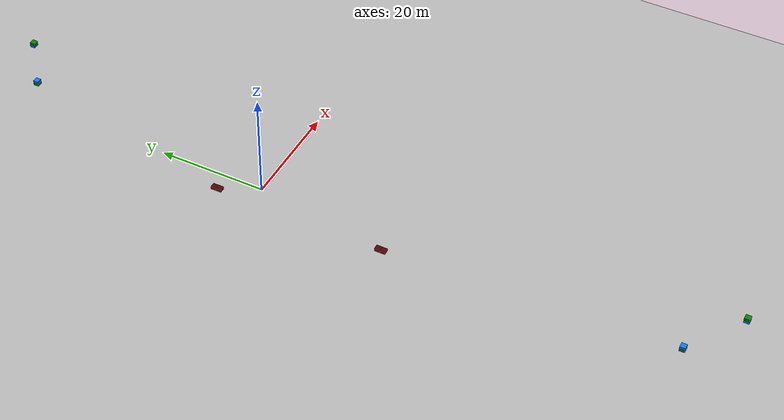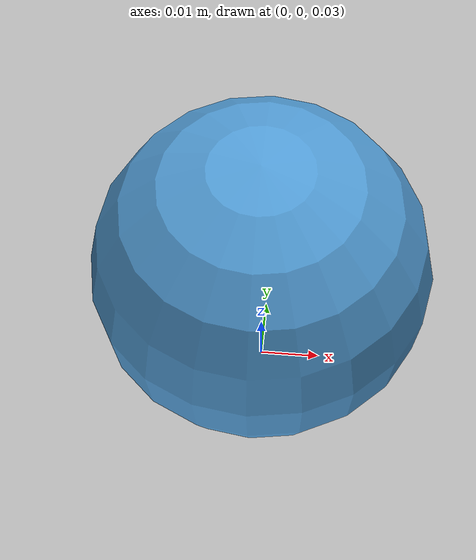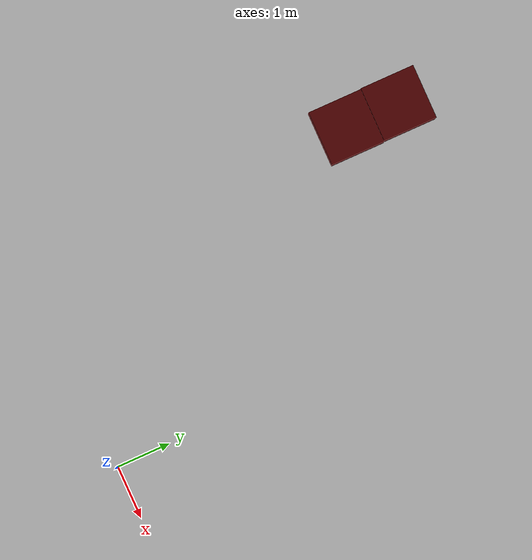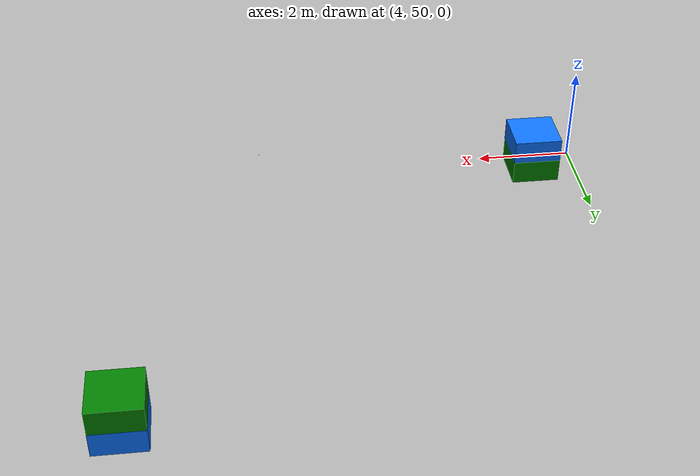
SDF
<sdf version="1.10">
 <world name="KKI">
  <physics name="4ms" type="dart">
   <max_step_size>0.0040000000000000001</max_step_size>
   <real_time_factor>1</real_time_factor>
   <real_time_update_rate>1000</real_time_update_rate>
  </physics>
  <plugin name="gz::sim::systems::Physics" filename="gz-sim-physics-system"/>
  <plugin name="gz::sim::systems::UserCommands" filename="gz-sim-user-commands-system"/>
  <plugin name="gz::sim::systems::Sensors" filename="gz-sim-sensors-system">
   <render_engine>ogre2</render_engine>
   <disable_on_drained_battery>true</disable_on_drained_battery>
  </plugin>
  <plugin name="gz::sim::systems::Imu" filename="gz-sim-imu-system"/>
  <plugin name="gz::sim::systems::Magnetometer" filename="gz-sim-magnetometer-system"/>
  <plugin name="gz::sim::systems::ForceTorque" filename="gz-sim-forcetorque-system"/>
  <plugin name="gz::sim::systems::ParticleEmitter" filename="gz-sim-particle-emitter-system"/>
  <plugin name="gz::sim::systems::SceneBroadcaster" filename="gz-sim-scene-broadcaster-system"/>
  <plugin name="gz::sim::systems::Contact" filename="gz-sim-contact-system"/>
  <plugin name="gz::sim::systems::NavSat" filename="gz-sim-navsat-system"/>
  <scene>
   <grid>false</grid>
   <ambient>1 1 1 1</ambient>
   <background>0.800000012 0.800000012 0.800000012 1</background>
   <shadows>true</shadows>
  </scene>
  <spherical_coordinates>
   <surface_model>EARTH_WGS84</surface_model>
   <world_frame_orientation>ENU</world_frame_orientation>
   <latitude_deg>-33.724223000000002</latitude_deg>
   <longitude_deg>150.67973599999999</longitude_deg>
   <elevation>0</elevation>
   <heading_deg>0</heading_deg>
  </spherical_coordinates>
  <plugin name="vrx::USVWind" filename="libUSVWind.so">
   <wind_obj>
    <name>wamv</name>
    <link_name>wamv/base_link</link_name>
    <coeff_vector>.5 .5 .33</coeff_vector>
   </wind_obj>
   <wind_direction>240</wind_direction>
   <wind_mean_velocity>0</wind_mean_velocity>
   <var_wind_gain_constants>0</var_wind_gain_constants>
   <var_wind_time_constants>2</var_wind_time_constants>
   <random_seed>10</random_seed>
   <update_rate>10</update_rate>
   <topic_wind_speed>/vrx/debug/wind/speed</topic_wind_speed>
   <topic_wind_direction>/vrx/debug/wind/direction</topic_wind_direction>
  </plugin>
  <plugin name="vrx::PublisherPlugin" filename="libPublisherPlugin.so">
   <message type="gz.msgs.Param" topic="/vrx/wavefield/parameters" every="2.0">params { key: "direction" value { type: DOUBLE double_value: 0.0 } } params { key: "gain" value { type: DOUBLE double_value: 0 } } params { key: "period" value { type: DOUBLE double_value: 5 } } params { key: "steepness" value { type: DOUBLE double_value: 0 } }</message>
  </plugin>
  <gravity>0 0 -9.8000000000000007</gravity>
  <magnetic_field>5.5644999999999998e-06 2.2875799999999999e-05 -4.2388400000000002e-05</magnetic_field>
  <atmosphere type="adiabatic"/>
  <model name="ground_plane">
   <static>true</static>
   <link name="link">
    <collision name="collision">
     <geometry><plane><normal>0 0 1</normal><size>10000 10000</size></plane></geometry>
     <surface><friction><ode><mu>100</mu><mu2>50</mu2></ode></friction></surface>
    </collision>
    <visual name="visual">
     <geometry><plane><normal>0 0 1</normal><size>10000 10000</size></plane></geometry>
     <material>
      <ambient>0.3 0.3 0.3 1</ambient>
      <diffuse>0.7 0.7 0.7 1</diffuse>
      <specular>0.01 0.01 0.01 1</specular>
     </material>
    </visual>
    <pose>0 0 -10 0 0 0</pose>
   </link>
  </model>
  <model name="blue_projectile">
   <link name="link">
    <inertial>
     <mass>0.040000000000000001</mass>
     <inertia>
      <ixx>2.1659999999999999e-05</ixx>
      <ixy>0</ixy>
      <ixz>0</ixz>
      <iyy>2166</iyy>
      <iyz>0</iyz>
      <izz>2166</izz>
     </inertia>
    </inertial>
    <collision name="collision">
     <geometry><sphere><radius>0.028500000000000001</radius></sphere></geometry>
    </collision>
    <visual name="visual">
     <geometry><sphere><radius>0.028500000000000001</radius></sphere></geometry>
     <material>
      <ambient>0.317600012 0.611800015 0.835300028 1</ambient>
      <diffuse>0.317600012 0.611800015 0.835300028 1</diffuse>
      <specular>0.317600012 0.611800015 0.835300028 1</specular>
     </material>
    </visual>
   </link>
   <pose>0 0 0.056924015640831736 0 0 0</pose>
   <plugin name="vrx::PolyhedraBuoyancyDrag" filename="libPolyhedraBuoyancyDrag.so">
    <fluid_density>1000</fluid_density>
    <fluid_level>0.0</fluid_level>
    <linear_drag>25.0</linear_drag>
    <angular_drag>2.0</angular_drag>
    <buoyancy name="collision_outer">
     <link_name>link</link_name>
     <pose>0 0 -0.02 0 0 0</pose>
     <geometry><sphere><radius>0.0285</radius></sphere></geometry>
    </buoyancy>
    <wavefield><topic>/vrx/wavefield/parameters</topic></wavefield>
   </plugin>
   <static>false</static>
  </model>
  <include>
   <name>box</name>
   <pose>10.21 -84.12 0.5 0 0 0</pose>
   <uri>model://box2</uri>
   <plugin name="vrx::PolyhedraBuoyancyDrag" filename="libPolyhedraBuoyancyDrag.so">
    <fluid_level>0.0</fluid_level>
    <linear_drag>25.0</linear_drag>
    <angular_drag>2.0</angular_drag>
    <buoyancy name="collision_outer">
     <link_name>link</link_name>
     <geometry><sphere><radius>0.25</radius></sphere></geometry>
    </buoyancy>
    <wavefield>
     <size>1000 1000</size>
     <cell_count>50 50</cell_count>
     <wave>
      <model>PMS</model>
      <period>5.0</period>
      <number>3</number>
      <scale>1.1</scale>
      <gain>0.3</gain>
      <direction>1 0</direction>
      <angle>0.4</angle>
      <tau>2.0</tau>
      <amplitude>0.0</amplitude>
      <steepness>0.0</steepness>
     </wave>
    </wavefield>
   </plugin>
  </include>
  <include>
   <name>box_0</name>
   <pose>-0.29 -77.12 0.5 0 0 0</pose>
   <uri>model://box</uri>
   <plugin name="vrx::PolyhedraBuoyancyDrag" filename="libPolyhedraBuoyancyDrag.so">
    <fluid_level>0.0</fluid_level>
    <linear_drag>25.0</linear_drag>
    <angular_drag>2.0</angular_drag>
    <buoyancy name="collision_outer">
     <link_name>link</link_name>
     <geometry><sphere><radius>0.25</radius></sphere></geometry>
    </buoyancy>
    <wavefield>
     <size>1000 1000</size>
     <cell_count>50 50</cell_count>
     <wave>
      <model>PMS</model>
      <period>5.0</period>
      <number>3</number>
      <scale>1.1</scale>
      <gain>0.3</gain>
      <direction>1 0</direction>
      <angle>0.4</angle>
      <tau>2.0</tau>
      <amplitude>0.0</amplitude>
      <steepness>0.0</steepness>
     </wave>
    </wavefield>
   </plugin>
  </include>
  <include>
   <name>box_1</name>
   <pose>13.71 57.49 0.5 0 0 0</pose>
   <uri>model://box2</uri>
   <plugin name="vrx::PolyhedraBuoyancyDrag" filename="libPolyhedraBuoyancyDrag.so">
    <fluid_level>0.0</fluid_level>
    <linear_drag>25.0</linear_drag>
    <angular_drag>2.0</angular_drag>
    <buoyancy name="collision_outer">
     <link_name>link</link_name>
     <geometry><sphere><radius>0.25</radius></sphere></geometry>
    </buoyancy>
    <wavefield>
     <size>1000 1000</size>
     <cell_count>50 50</cell_count>
     <wave>
      <model>PMS</model>
      <period>5.0</period>
      <number>3</number>
      <scale>1.1</scale>
      <gain>0.3</gain>
      <direction>1 0</direction>
      <angle>0.4</angle>
      <tau>2.0</tau>
      <amplitude>0.0</amplitude>
      <steepness>0.0</steepness>
     </wave>
    </wavefield>
   </plugin>
  </include>
  <include>
   <name>box_2</name>
   <pose>4.96 50.49 0.5 0 0 0</pose>
   <uri>model://box</uri>
   <plugin name="vrx::PolyhedraBuoyancyDrag" filename="libPolyhedraBuoyancyDrag.so">
    <fluid_level>0.0</fluid_level>
    <linear_drag>25.0</linear_drag>
    <angular_drag>2.0</angular_drag>
    <buoyancy name="collision_outer">
     <link_name>link</link_name>
     <geometry><sphere><radius>0.25</radius></sphere></geometry>
    </buoyancy>
    <wavefield>
     <size>1000 1000</size>
     <cell_count>50 50</cell_count>
     <wave>
      <model>PMS</model>
      <period>5.0</period>
      <number>3</number>
      <scale>1.1</scale>
      <gain>0.3</gain>
      <direction>1 0</direction>
      <angle>0.4</angle>
      <tau>2.0</tau>
      <amplitude>0.0</amplitude>
      <steepness>0.0</steepness>
     </wave>
    </wavefield>
   </plugin>
  </include>
  <include>
   <name>dock_red</name>
   <pose>-3.7974600791931152 6.1194119453430176 0.52516418382041259 0 0 0</pose>
   <uri>model://dock_red</uri>
   <plugin name="vrx::PolyhedraBuoyancyDrag" filename="libPolyhedraBuoyancyDrag.so">
    <fluid_level>0.0</fluid_level>
    <linear_drag>25.0</linear_drag>
    <angular_drag>2.0</angular_drag>
    <buoyancy name="collision_outer">
     <link_name>link</link_name>
     <geometry><sphere><radius>0.25</radius></sphere></geometry>
    </buoyancy>
    <wavefield>
     <size>1000 1000</size>
     <cell_count>50 50</cell_count>
     <wave>
      <model>PMS</model>
      <period>5.0</period>
      <number>3</number>
      <scale>1.1</scale>
      <gain>0.3</gain>
      <direction>1 0</direction>
      <angle>0.4</angle>
      <tau>2.0</tau>
      <amplitude>0.0</amplitude>
      <steepness>0.0</steepness>
     </wave>
    </wavefield>
   </plugin>
  </include>
  <include>
   <name>dock_red_1</name>
   <pose>-3.8097596168518066 7.1209301948547363 0.52660575505510999 0 0 0</pose>
   <uri>model://dock_red</uri>
   <plugin name="vrx::PolyhedraBuoyancyDrag" filename="libPolyhedraBuoyancyDrag.so">
    <fluid_level>0.0</fluid_level>
    <linear_drag>25.0</linear_drag>
    <angular_drag>2.0</angular_drag>
    <buoyancy name="collision_outer">
     <link_name>link</link_name>
     <geometry><sphere><radius>0.25</radius></sphere></geometry>
    </buoyancy>
    <wavefield>
     <size>1000 1000</size>
     <cell_count>50 50</cell_count>
     <wave>
      <model>PMS</model>
      <period>5.0</period>
      <number>3</number>
      <scale>1.1</scale>
      <gain>0.3</gain>
      <direction>1 0</direction>
      <angle>0.4</angle>
      <tau>2.0</tau>
      <amplitude>0.0</amplitude>
      <steepness>0.0</steepness>
     </wave>
    </wavefield>
   </plugin>
  </include>
  <include>
   <name>dock_red_2</name>
   <pose>-3.79 -24.62 0.52516418382041259 0 0 0</pose>
   <uri>model://dock_red</uri>
   <plugin name="vrx::PolyhedraBuoyancyDrag" filename="libPolyhedraBuoyancyDrag.so">
    <fluid_level>0.0</fluid_level>
    <linear_drag>25.0</linear_drag>
    <angular_drag>2.0</angular_drag>
    <buoyancy name="collision_outer">
     <link_name>link</link_name>
     <geometry><sphere><radius>0.25</radius></sphere></geometry>
    </buoyancy>
    <wavefield>
     <size>1000 1000</size>
     <cell_count>50 50</cell_count>
     <wave>
      <model>PMS</model>
      <period>5.0</period>
      <number>3</number>
      <scale>1.1</scale>
      <gain>0.3</gain>
      <direction>1 0</direction>
      <angle>0.4</angle>
      <tau>2.0</tau>
      <amplitude>0.0</amplitude>
      <steepness>0.0</steepness>
     </wave>
    </wavefield>
   </plugin>
  </include>
  <include>
   <name>dock_red_3</name>
   <pose>-3.79 -25.62 0.52660575505510999 0 0 0</pose>
   <uri>model://dock_red</uri>
   <plugin name="vrx::PolyhedraBuoyancyDrag" filename="libPolyhedraBuoyancyDrag.so">
    <fluid_level>0.0</fluid_level>
    <linear_drag>25.0</linear_drag>
    <angular_drag>2.0</angular_drag>
    <buoyancy name="collision_outer">
     <link_name>link</link_name>
     <geometry><sphere><radius>0.25</radius></sphere></geometry>
    </buoyancy>
    <wavefield>
     <size>1000 1000</size>
     <cell_count>50 50</cell_count>
     <wave>
      <model>PMS</model>
      <period>5.0</period>
      <number>3</number>
      <scale>1.1</scale>
      <gain>0.3</gain>
      <direction>1 0</direction>
      <angle>0.4</angle>
      <tau>2.0</tau>
      <amplitude>0.0</amplitude>
      <steepness>0.0</steepness>
     </wave>
    </wavefield>
   </plugin>
  </include>
  <light name="sun" type="directional">
   <pose>0 0 10 0 0 0</pose>
   <intensity>1</intensity>
   <direction>-0.5 0.10000000000000001 -0.90000000000000002</direction>
   <diffuse>0.800000012 0.800000012 0.800000012 1</diffuse>
   <specular>0.200000003 0.200000003 0.200000003 1</specular>
   <attenuation>
    <range>1000</range>
    <linear>0.0099999997764825821</linear>
    <constant>0.89999997615814209</constant>
    <quadratic>0.0010000000474974513</quadratic>
   </attenuation>
   <spot><inner_angle>0</inner_angle><outer_angle>0</outer_angle><falloff>0</falloff></spot>
  </light>
 </world>
</sdf>

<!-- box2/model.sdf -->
<sdf version="1.6">
    <model name="cube_20k">
        <link name="link">
            <inertial>
                <pose>0 0 0 0 0 0</pose>
                <mass>3.5</mass>
                <inertia>
                  <ixx>0.16666</ixx>
                  <ixy>0</ixy>
                  <ixz>0</ixz>
                  <iyy>0.16666</iyy>
                  <iyz>0</iyz>
                  <izz>0.16666</izz>
                </inertia>
            </inertial>
            <collision name="box_collision">
                <geometry>
                    <box>
                      <size>1 1 1</size>
                    </box>
                </geometry>
            </collision>
            <visual name='box_visual_top'>
              <pose>0 0 0.25 0 0 0</pose> <!-- setengah atas -->
              <geometry>
                <box>
                  <size>1 1 0.5</size>
                </box>
              </geometry>
              <material>
                <ambient>0 0.3 0 1</ambient> <!-- hijau -->
                <diffuse>0 0.5 0 1</diffuse>
              </material>
            </visual>
            <visual name='box_visual_bottom'>
              <pose>0 0 -0.25 0 0 0</pose> <!-- setengah bawah -->
              <geometry>
                <box>
                  <size>1 1 0.5</size>
                </box>
              </geometry>
              <material>
                <ambient>0.05 0.45 1.0 1</ambient>
                <diffuse>0.05 0.45 1.0 1</diffuse>
              </material>
            </visual>
        </link>
    </model>
</sdf>

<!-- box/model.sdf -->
<sdf version="1.6">
    <model name="cube_20k">
        <link name="link">
            <inertial>
                <pose>0 0 0 0 0 0</pose>
                <mass>3.5</mass>
                <inertia>
                  <ixx>0.16666</ixx>
                  <ixy>0</ixy>
                  <ixz>0</ixz>
                  <iyy>0.16666</iyy>
                  <iyz>0</iyz>
                  <izz>0.16666</izz>
                </inertia>
            </inertial>
            <collision name="box_collision">
                <geometry>
                    <box>
                      <size>1 1 1</size>
                    </box>
                </geometry>
            </collision>
            <visual name='box_visual_top'>
              <pose>0 0 0.25 0 0 0</pose> <!-- setengah atas -->
              <geometry>
                <box>
                  <size>1 1 0.5</size>
                </box>
              </geometry>
              <material>
                <ambient>0.05 0.45 1.0 1</ambient> <!-- biru -->
                <diffuse>0.05 0.45 1.0 1</diffuse>
              </material>
            </visual>
            <visual name='box_visual_bottom'>
              <pose>0 0 -0.25 0 0 0</pose> <!-- setengah bawah -->
              <geometry>
                <box>
                  <size>1 1 0.5</size>
                </box>
              </geometry>
              <material>
                <ambient>0 0.3 0 1</ambient> <!-- hijau -->
                <diffuse>0 0.5 0 1</diffuse>
              </material>
            </visual>
        </link>
    </model>
</sdf>

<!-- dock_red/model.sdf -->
<sdf version="1.6">
    <model name="cube_20k">
        <link name="link">
            <inertial>
                <pose>0 0 0 0 0 0</pose>
                <mass>3.5</mass>
                <inertia>
                  <ixx>0.16666</ixx>
                  <ixy>0</ixy>
                  <ixz>0</ixz>
                  <iyy>0.16666</iyy>
                  <iyz>0</iyz>
                  <izz>0.16666</izz>
                </inertia>
            </inertial>
            <collision name="box_collision">
                <geometry>
                    <box>
                      <size>1 1 1</size>
                    </box>
                </geometry>
            </collision>
            <visual name='box_visual'>
              <pose>0 0 0.25 0 0 0</pose> <!-- setengah atas -->
              <geometry>
                <box>
                  <size>1 1 0.5</size>
                </box>
              </geometry>
              <material>
                <ambient>0.3 0 0 1</ambient> <!-- hijau -->
                <diffuse>0.3 0 0 1</diffuse>
              </material>
            </visual>
        </link>
    </model>
</sdf>
